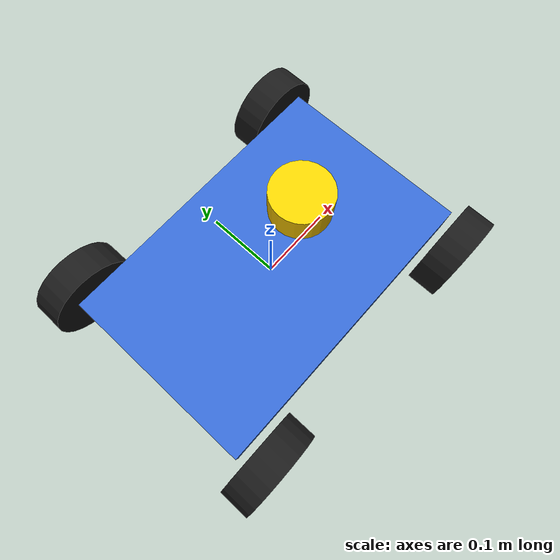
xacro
<?xml version="1.0"?>
<robot name="mi_robot" xmlns:xacro="http://www.ros.org/wiki/xacro">

  <!-- ===================== Parámetros de la variante ===================== -->
  <!-- TODO (Parte 1): reemplace cada ${TODO} por el valor de su variante -->
  <xacro:property name="rueda_radio" value="${0.060}"/>
  <xacro:property name="distancia_ejes" value="${0.36}"/>      <!-- wheelbase (m) -->
  <xacro:property name="separacion_ruedas" value="${0.32}"/>   <!-- track (m) -->
  <xacro:property name="lx" value="${distancia_ejes / 2.0}"/>
  <xacro:property name="ly" value="${separacion_ruedas / 2.0}"/>
  <xacro:property name="rueda_ancho" value="0.04"/>
  <xacro:property name="rueda_masa" value="0.3"/>

  <!-- Chasis (dado) -->
  <xacro:property name="chasis_largo" value="${distancia_ejes + 0.04}"/>
  <xacro:property name="chasis_ancho" value="${separacion_ruedas - rueda_ancho - 0.02}"/>
  <xacro:property name="chasis_alto" value="0.05"/>
  <xacro:property name="chasis_masa" value="3.0"/>

  <!-- ===================== Inercias (dadas) ===================== -->
  <xacro:macro name="inercia_caja" params="m x y z">
    <inertia ixx="${m*(y*y + z*z)/12.0}" ixy="0" ixz="0"
             iyy="${m*(x*x + z*z)/12.0}" iyz="0"
             izz="${m*(x*x + y*y)/12.0}"/>
  </xacro:macro>
  <!-- Cilindro con eje a lo largo de z local -->
  <xacro:macro name="inercia_cilindro" params="m r h">
    <inertia ixx="${m*(3*r*r + h*h)/12.0}" ixy="0" ixz="0"
             iyy="${m*(3*r*r + h*h)/12.0}" iyz="0"
             izz="${m*r*r/2.0}"/>
  </xacro:macro>

  <!-- ===================== Chasis (dado) ===================== -->
  <link name="base_link">
    <visual>
      <origin xyz="0 0 0.02" rpy="0 0 0"/>
      <geometry><box size="${chasis_largo} ${chasis_ancho} ${chasis_alto}"/></geometry>
      <material name="azul"><color rgba="0.2 0.4 0.8 1"/></material>
    </visual>
    <collision>
      <origin xyz="0 0 0.02" rpy="0 0 0"/>
      <geometry><box size="${chasis_largo} ${chasis_ancho} ${chasis_alto}"/></geometry>
    </collision>
    <inertial>
      <origin xyz="0 0 0.02" rpy="0 0 0"/>
      <mass value="${chasis_masa}"/>
      <xacro:inercia_caja m="${chasis_masa}" x="${chasis_largo}" y="${chasis_ancho}" z="${chasis_alto}"/>
    </inertial>
  </link>

  <!-- ===================== Ruedas (Parte 1) ===================== -->
  <xacro:macro name="rueda" params="prefijo x_signo y_signo">
    <link name="rueda_${prefijo}">
      <visual>
        <geometry><cylinder radius="${rueda_radio}" length="${rueda_ancho}"/></geometry>
        <material name="negro"><color rgba="0.1 0.1 0.1 1"/></material>
      </visual>
      <collision>
        <geometry><sphere radius="${rueda_radio}"/></geometry>
      </collision>
      <inertial>
        <mass value="${rueda_masa}"/>
        <xacro:inercia_cilindro m="${rueda_masa}" r="${rueda_radio}" h="${rueda_ancho}"/>
      </inertial>
    </link>

    <joint name="joint_rueda_${prefijo}" type="continuous">
      <parent link="base_link"/>
      <child link="rueda_${prefijo}"/>
      <origin xyz="${x_signo*lx} ${y_signo*ly} 0" rpy="${-pi/2} 0 0"/>
      <axis xyz="0 0 1"/>
    </joint>

  </xacro:macro>

  <xacro:rueda prefijo="del_izq" x_signo="1" y_signo="1"/>
  <!-- TODO: instanciar del_der, tra_izq y tra_der -->
  <xacro:rueda prefijo="del_der" x_signo="1"  y_signo="-1"/>
  <xacro:rueda prefijo="tra_izq" x_signo="-1" y_signo="1"/>
  <xacro:rueda prefijo="tra_der" x_signo="-1" y_signo="-1"/>

  <!-- ===================== RPLIDAR A3 (Parte 2) ===================== -->
  <!-- TODO: link "lidar_link" (cilindro) con dimensiones y masa de la hoja de datos:
       visual, collision e inertial -->

  <!-- TODO: joint fijo "joint_lidar" base_link -> lidar_link en la posición de su variante -->

  <link name="lidar_link">
    <visual>
      <geometry><cylinder radius="0.038" length="0.041"/></geometry>
      <material name="amarillo"><color rgba="1.0 0.8 0.0 1"/></material>
    </visual>
    <collision>
      <geometry><cylinder radius="0.038" length="0.041"/></geometry>
    </collision>
    <inertial>
      <mass value="0.19"/>
      <xacro:inercia_cilindro m="0.19" r="0.038" h="0.041"/>
    </inertial>
  </link>

  <joint name="joint_lidar" type="fixed">
    <parent link="base_link"/>
    <child link="lidar_link"/>
    <origin xyz="0.05 0 0.13" rpy="0 0 0"/>
  </joint>

  <gazebo reference="lidar_link">
    <sensor name="rplidar_a3" type="gpu_lidar">
      <topic>/scan</topic>
      <gz_frame_id>lidar_link</gz_frame_id>
      <update_rate>10</update_rate>
      <always_on>1</always_on>
      <visualize>true</visualize>
      <lidar>
        <scan>
          <horizontal>
            <samples>1000</samples>          <!-- muestras por vuelta -->
            <resolution>1</resolution>
            <min_angle>${-pi}</min_angle>
            <max_angle>${pi}</max_angle>
          </horizontal>
        </scan>
        <range>
          <min>0.2</min>
          <max>20.0</max>
          <resolution>0.01</resolution>
        </range>
        <!-- TODO: ruido gaussiano, media 0, desviación 0.01 m -->
        <noise>
          <type>gaussian</type>
          <mean>0.0</mean>
          <stddev>0.01</stddev>
        </noise>
      </lidar>
    </sensor>
  </gazebo>

  <!-- ===================== Orbbec Astra (Parte 2) ===================== -->
  <!-- TODO: link "camara_link" (caja) con dimensiones y masa de la hoja de datos -->

  <!-- TODO: joint fijo "joint_camara" base_link -> camara_link en la posición de su variante -->

  <!-- TODO: link "camara_optica_link" y joint fijo "joint_camara_optica" desde
       camara_link con rpy = (-π/2, 0, -π/2) (REP-103) -->

  <gazebo reference="camara_link">
    <sensor name="astra" type="rgbd_camera">
      <topic>/camara</topic>
      <gz_frame_id>TODO</gz_frame_id>
      <update_rate>TODO</update_rate>
      <always_on>1</always_on>
      <camera>
        <horizontal_fov>TODO</horizontal_fov>   <!-- en radianes -->
        <image>
          <width>TODO</width>
          <height>TODO</height>
          <format>R8G8B8</format>
        </image>
        <clip>
          <near>TODO</near>
          <far>TODO</far>
        </clip>
        <depth_camera>
          <clip>
            <near>TODO</near>
            <far>TODO</far>
          </clip>
        </depth_camera>
      </camera>
    </sensor>
  </gazebo>

  <!-- ===================== Plugins de Gazebo (Parte 1) ===================== -->
  <xacro:macro name="motor" params="prefijo">
    <plugin filename="gz-sim-joint-controller-system" name="gz::sim::systems::JointController">
      <joint_name>joint_rueda_${prefijo}</joint_name>
      <use_force_commands>false</use_force_commands>
      <topic>/vel_rueda_${prefijo}</topic>
    </plugin>
  </xacro:macro>

  <gazebo>
    <xacro:motor prefijo="del_izq"/>
    <!-- TODO: motores de del_der, tra_izq y tra_der -->

    <!-- TODO: plugin gz-sim-joint-state-publisher-system (encoders) -->
  </gazebo>

</robot>
